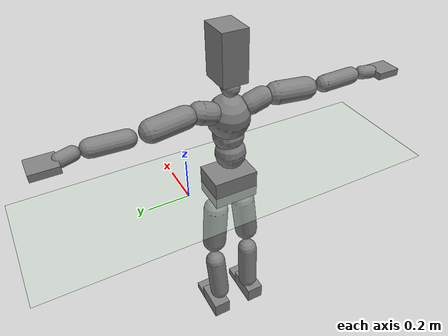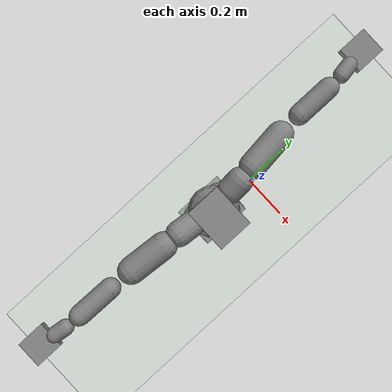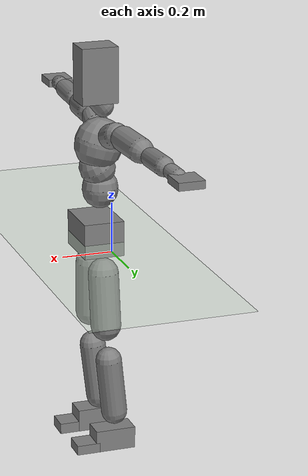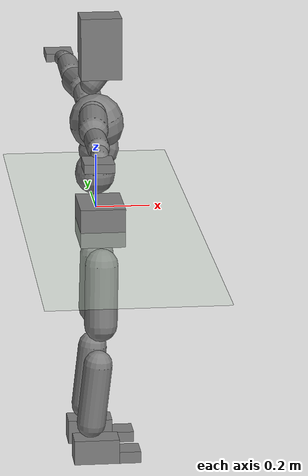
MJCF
<mujoco model="humanoid">
  <compiler coordinate="local" />
  <statistic extent="2" center="0 0 1" />
  <option timestep="0.00555" />
  <default>
    <motor ctrlrange="-1 1" ctrllimited="true" />
    <geom type="capsule" condim="1" friction="1.0 0.05 0.05" solimp=".9 .99 .003" solref=".015 1" />
    <joint type="hinge" damping="0.1" stiffness="5" armature=".007" limited="true" solimplimit="0 .99 .01" />
    <site size=".04" group="3" />
    <default class="force-torque">
      <site type="box" size=".01 .01 .02" rgba="1 0 0 1" />
    </default>
    <default class="touch">
      <site type="capsule" rgba="0 0 1 .3" />
    </default>
  </default>
  <asset>
    <texture type="skybox" builtin="gradient" rgb1=".4 .5 .6" rgb2="0 0 0" width="100" height="100" />
    <texture builtin="flat" height="1278" mark="cross" markrgb="1 1 1" name="texgeom" random="0.01" rgb1="0.8 0.6 0.4" rgb2="0.8 0.6 0.4" type="cube" width="127" />
    <texture builtin="checker" height="100" name="texplane" rgb1="0 0 0" rgb2="0.8 0.8 0.8" type="2d" width="100" />
    <material name="MatPlane" reflectance="0.5" shininess="1" specular="1" texrepeat="60 60" texture="texplane" />
    <material name="geom" texture="texgeom" texuniform="true" />
  </asset>
  <worldbody>
    <light cutoff="100" diffuse="1 1 1" dir="-0 0 -1.3" directional="true" exponent="1" pos="0 0 1.3" specular=".1 .1 .1" />
    <geom conaffinity="1" condim="3" name="floor" pos="0 0 0" rgba="0.8 0.9 0.8 1" size="100 100 .2" type="plane" material="MatPlane" />
    <body name="Pelvis" pos="-0.0009 -0.2114 0.0278">
      <freejoint name="Pelvis" />
      <geom type="box" pos="-0.0042 0.0001 -0.0160" size="0.082 0.1095 0.0713" quat="1.0000 0.0000 0.0000 0.0000" density="3010.216059" />
      <body name="L_Hip" pos="-0.008 0.0714 -0.0896">
        <joint name="L_Hip_x" type="hinge" pos="0 0 0" axis="1 0 0" stiffness="800" damping="80" armature="0.02" range="-180.0000 180.0000" />
        <joint name="L_Hip_y" type="hinge" pos="0 0 0" axis="0 1 0" stiffness="800" damping="80" armature="0.02" range="-180.0000 180.0000" />
        <joint name="L_Hip_z" type="hinge" pos="0 0 0" axis="0 0 1" stiffness="800" damping="80" armature="0.02" range="-180.0000 180.0000" />
        <geom type="capsule" contype="1" conaffinity="1" density="2040.816327" fromto="-0.0013 0.0061 -0.0728 -0.0054 0.0245 -0.2914" size="0.0613" />
        <body name="L_Knee" pos="-0.0067 0.0307 -0.3642">
          <joint name="L_Knee_x" type="hinge" pos="0 0 0" axis="1 0 0" stiffness="800" damping="80" armature="0.02" range="-180.0000 180.0000" />
          <joint name="L_Knee_y" type="hinge" pos="0 0 0" axis="0 1 0" stiffness="800" damping="80" armature="0.02" range="-180.0000 180.0000" />
          <joint name="L_Knee_z" type="hinge" pos="0 0 0" axis="0 0 1" stiffness="800" damping="80" armature="0.02" range="-180.0000 180.0000" />
          <geom type="capsule" contype="1" conaffinity="1" density="1234.567901" fromto="-0.0087 -0.0023 -0.0767 -0.0348 -0.0092 -0.3067" size="0.0529" />
          <body name="L_Ankle" pos="-0.0435 -0.0116 -0.3833">
            <joint name="L_Ankle_x" type="hinge" pos="0 0 0" axis="1 0 0" stiffness="800" damping="80" armature="0.02" range="-180.0000 180.0000" />
            <joint name="L_Ankle_y" type="hinge" pos="0 0 0" axis="0 1 0" stiffness="800" damping="80" armature="0.02" range="-180.0000 180.0000" />
            <joint name="L_Ankle_z" type="hinge" pos="0 0 0" axis="0 0 1" stiffness="800" damping="80" armature="0.02" range="-180.0000 180.0000" />
            <geom type="box" pos="0.0232 0.0206 -0.0237" size="0.082 0.0455 0.0449" quat="1.0000 0.0000 0.0000 0.0000" density="447.171219" />
            <body name="L_Toe" pos="0.1144 0.0233 -0.0546">
              <joint name="L_Toe_x" type="hinge" pos="0 0 0" axis="1 0 0" stiffness="500" damping="50" armature="0.02" range="-180.0000 180.0000" />
              <joint name="L_Toe_y" type="hinge" pos="0 0 0" axis="0 1 0" stiffness="500" damping="50" armature="0.02" range="-180.0000 180.0000" />
              <joint name="L_Toe_z" type="hinge" pos="0 0 0" axis="0 0 1" stiffness="500" damping="50" armature="0.02" range="-180.0000 180.0000" />
              <geom type="box" pos="0.0239 -0.0027 0.0055" size="0.048 0.0458 0.0195" quat="1.0000 0.0000 0.0000 0.0000" density="413.943028" />
            </body>
          </body>
        </body>
      </body>
      <body name="R_Hip" pos="-0.0048 -0.069 -0.089">
        <joint name="R_Hip_x" type="hinge" pos="0 0 0" axis="1 0 0" stiffness="800" damping="80" armature="0.02" range="-180.0000 180.0000" />
        <joint name="R_Hip_y" type="hinge" pos="0 0 0" axis="0 1 0" stiffness="800" damping="80" armature="0.02" range="-180.0000 180.0000" />
        <joint name="R_Hip_z" type="hinge" pos="0 0 0" axis="0 0 1" stiffness="800" damping="80" armature="0.02" range="-180.0000 180.0000" />
        <geom type="capsule" contype="1" conaffinity="1" density="2040.816327" fromto="-0.0018 -0.0072 -0.0741 -0.0073 -0.0289 -0.2965" size="0.0605" />
        <body name="R_Knee" pos="-0.0092 -0.0362 -0.3707">
          <joint name="R_Knee_x" type="hinge" pos="0 0 0" axis="1 0 0" stiffness="800" damping="80" armature="0.02" range="-180.0000 180.0000" />
          <joint name="R_Knee_y" type="hinge" pos="0 0 0" axis="0 1 0" stiffness="800" damping="80" armature="0.02" range="-180.0000 180.0000" />
          <joint name="R_Knee_z" type="hinge" pos="0 0 0" axis="0 0 1" stiffness="800" damping="80" armature="0.02" range="-180.0000 180.0000" />
          <geom type="capsule" contype="1" conaffinity="1" density="1234.567901" fromto="-0.0084 0.0028 -0.0767 -0.0335 0.0112 -0.3069" size="0.0531" />
          <body name="R_Ankle" pos="-0.0419 0.014 -0.3836">
            <joint name="R_Ankle_x" type="hinge" pos="0 0 0" axis="1 0 0" stiffness="800" damping="80" armature="0.02" range="-180.0000 180.0000" />
            <joint name="R_Ankle_y" type="hinge" pos="0 0 0" axis="0 1 0" stiffness="800" damping="80" armature="0.02" range="-180.0000 180.0000" />
            <joint name="R_Ankle_z" type="hinge" pos="0 0 0" axis="0 0 1" stiffness="800" damping="80" armature="0.02" range="-180.0000 180.0000" />
            <geom type="box" pos="0.0245 -0.0181 -0.0169" size="0.083 0.046 0.0458" quat="1.0000 0.0000 0.0000 0.0000" density="432.719457" />
            <body name="R_Toe" pos="0.1179 -0.022 -0.0464">
              <joint name="R_Toe_x" type="hinge" pos="0 0 0" axis="1 0 0" stiffness="500" damping="50" armature="0.02" range="-180.0000 180.0000" />
              <joint name="R_Toe_y" type="hinge" pos="0 0 0" axis="0 1 0" stiffness="500" damping="50" armature="0.02" range="-180.0000 180.0000" />
              <joint name="R_Toe_z" type="hinge" pos="0 0 0" axis="0 0 1" stiffness="500" damping="50" armature="0.02" range="-180.0000 180.0000" />
              <geom type="box" pos="0.0218 0.0039 0.0054" size="0.047 0.0457 0.0217" quat="1.0000 0.0000 0.0000 0.0000" density="384.241938" />
            </body>
          </body>
        </body>
      </body>
      <body name="Torso" pos="-0.0222 -0.0025 0.1033">
        <joint name="Torso_x" type="hinge" pos="0 0 0" axis="1 0 0" stiffness="1000" damping="100" armature="0.02" range="-180.0000 180.0000" />
        <joint name="Torso_y" type="hinge" pos="0 0 0" axis="0 1 0" stiffness="1000" damping="100" armature="0.02" range="-180.0000 180.0000" />
        <joint name="Torso_z" type="hinge" pos="0 0 0" axis="0 0 1" stiffness="1000" damping="100" armature="0.02" range="-180.0000 180.0000" />
        <geom type="capsule" contype="1" conaffinity="1" density="2040.816327" fromto="-0.0008 0.0016 0.0574 -0.0009 0.0020 0.0702" size="0.0723" />
        <body name="Spine" pos="-0.0017 0.0036 0.1277">
          <joint name="Spine_x" type="hinge" pos="0 0 0" axis="1 0 0" stiffness="1000" damping="100" armature="0.02" range="-180.0000 180.0000" />
          <joint name="Spine_y" type="hinge" pos="0 0 0" axis="0 1 0" stiffness="1000" damping="100" armature="0.02" range="-180.0000 180.0000" />
          <joint name="Spine_z" type="hinge" pos="0 0 0" axis="0 0 1" stiffness="1000" damping="100" armature="0.02" range="-180.0000 180.0000" />
          <geom type="capsule" contype="1" conaffinity="1" density="2040.816327" fromto="0.0125 0.0009 0.0221 0.0153 0.0011 0.0270" size="0.0719" />
          <body name="Chest" pos="0.0279 0.002 0.0491">
            <joint name="Chest_x" type="hinge" pos="0 0 0" axis="1 0 0" stiffness="1000" damping="100" armature="0.02" range="-180.0000 180.0000" />
            <joint name="Chest_y" type="hinge" pos="0 0 0" axis="0 1 0" stiffness="1000" damping="100" armature="0.02" range="-180.0000 180.0000" />
            <joint name="Chest_z" type="hinge" pos="0 0 0" axis="0 0 1" stiffness="1000" damping="100" armature="0.02" range="-180.0000 180.0000" />
            <geom type="capsule" contype="1" conaffinity="1" density="2040.816327" fromto="-0.0193 -0.0006 0.0662 -0.0235 -0.0007 0.0810" size="0.0969" />
            <body name="Neck" pos="-0.0498 -0.002 0.2082">
              <joint name="Neck_x" type="hinge" pos="0 0 0" axis="1 0 0" stiffness="500" damping="50" armature="0.02" range="-180.0000 180.0000" />
              <joint name="Neck_y" type="hinge" pos="0 0 0" axis="0 1 0" stiffness="500" damping="50" armature="0.02" range="-180.0000 180.0000" />
              <joint name="Neck_z" type="hinge" pos="0 0 0" axis="0 0 1" stiffness="500" damping="50" armature="0.02" range="-180.0000 180.0000" />
              <geom type="capsule" contype="1" conaffinity="1" density="1000" fromto="0.0100 0.0007 0.0125 0.0402 0.0028 0.0499" size="0.041" />
              <body name="Head" pos="0.0502 0.0035 0.0623">
                <joint name="Head_x" type="hinge" pos="0 0 0" axis="1 0 0" stiffness="500" damping="50" armature="0.02" range="-180.0000 180.0000" />
                <joint name="Head_y" type="hinge" pos="0 0 0" axis="0 1 0" stiffness="500" damping="50" armature="0.02" range="-180.0000 180.0000" />
                <joint name="Head_z" type="hinge" pos="0 0 0" axis="0 0 1" stiffness="500" damping="50" armature="0.02" range="-180.0000 180.0000" />
                <geom type="box" pos="-0.0101 -0.0045 0.0859" size="0.0736 0.0584 0.1126" quat="1.0000 0.0000 0.0000 0.0000" density="1023.9051" />
              </body>
            </body>
            <body name="L_Thorax" pos="-0.0369 0.0753 0.1178">
              <joint name="L_Thorax_x" type="hinge" pos="0 0 0" axis="1 0 0" stiffness="500" damping="50" armature="0.02" range="-180.0000 180.0000" />
              <joint name="L_Thorax_y" type="hinge" pos="0 0 0" axis="0 1 0" stiffness="500" damping="50" armature="0.02" range="-180.0000 180.0000" />
              <joint name="L_Thorax_z" type="hinge" pos="0 0 0" axis="0 0 1" stiffness="500" damping="50" armature="0.02" range="-180.0000 180.0000" />
              <geom type="capsule" contype="1" conaffinity="1" density="1000" fromto="-0.0015 0.0171 0.0063 -0.0058 0.0683 0.0254" size="0.0496" />
              <body name="L_Shoulder" pos="-0.0073 0.0853 0.0317">
                <joint name="L_Shoulder_x" type="hinge" pos="0 0 0" axis="1 0 0" stiffness="500" damping="50" armature="0.02" range="-720.0000 720.0000" />
                <joint name="L_Shoulder_y" type="hinge" pos="0 0 0" axis="0 1 0" stiffness="500" damping="50" armature="0.02" range="-720.0000 720.0000" />
                <joint name="L_Shoulder_z" type="hinge" pos="0 0 0" axis="0 0 1" stiffness="500" damping="50" armature="0.02" range="-720.0000 720.0000" />
                <geom type="capsule" contype="1" conaffinity="1" density="1000" fromto="-0.0055 0.0502 -0.0024 -0.0220 0.2010 -0.0096" size="0.0498" />
                <body name="L_Elbow" pos="-0.0275 0.2512 -0.012">
                  <joint name="L_Elbow_x" type="hinge" pos="0 0 0" axis="1 0 0" stiffness="500" damping="50" armature="0.02" range="-720.0000 720.0000" />
                  <joint name="L_Elbow_y" type="hinge" pos="0 0 0" axis="0 1 0" stiffness="500" damping="50" armature="0.02" range="-720.0000 720.0000" />
                  <joint name="L_Elbow_z" type="hinge" pos="0 0 0" axis="0 0 1" stiffness="500" damping="50" armature="0.02" range="-720.0000 720.0000" />
                  <geom type="capsule" contype="1" conaffinity="1" density="1000" fromto="0.0000 0.0476 0.0018 0.0000 0.1904 0.0072" size="0.0386" />
                  <body name="L_Wrist" pos="0 0.238 0.009">
                    <joint name="L_Wrist_x" type="hinge" pos="0 0 0" axis="1 0 0" stiffness="300" damping="30" armature="0.02" range="-180.0000 180.0000" />
                    <joint name="L_Wrist_y" type="hinge" pos="0 0 0" axis="0 1 0" stiffness="300" damping="30" armature="0.02" range="-180.0000 180.0000" />
                    <joint name="L_Wrist_z" type="hinge" pos="0 0 0" axis="0 0 1" stiffness="300" damping="30" armature="0.02" range="-180.0000 180.0000" />
                    <geom type="capsule" contype="1" conaffinity="1" density="1000" fromto="-0.0026 0.0159 -0.0019 -0.0106 0.0637 -0.0077" size="0.0301" />
                    <body name="L_Hand" pos="-0.0132 0.0797 -0.0097">
                      <joint name="L_Hand_x" type="hinge" pos="0 0 0" axis="1 0 0" stiffness="300" damping="30" armature="0.02" range="-180.0000 180.0000" />
                      <joint name="L_Hand_y" type="hinge" pos="0 0 0" axis="0 1 0" stiffness="300" damping="30" armature="0.02" range="-180.0000 180.0000" />
                      <joint name="L_Hand_z" type="hinge" pos="0 0 0" axis="0 0 1" stiffness="300" damping="30" armature="0.02" range="-180.0000 180.0000" />
                      <geom type="box" pos="-0.0064 0.0474 0.0008" size="0.0513 0.0564 0.0153" quat="1.0000 0.0000 0.0000 0.0000" density="393.023524" />
                    </body>
                  </body>
                </body>
              </body>
            </body>
            <body name="R_Thorax" pos="-0.0418 -0.077 0.1156">
              <joint name="R_Thorax_x" type="hinge" pos="0 0 0" axis="1 0 0" stiffness="500" damping="50" armature="0.02" range="-180.0000 180.0000" />
              <joint name="R_Thorax_y" type="hinge" pos="0 0 0" axis="0 1 0" stiffness="500" damping="50" armature="0.02" range="-180.0000 180.0000" />
              <joint name="R_Thorax_z" type="hinge" pos="0 0 0" axis="0 0 1" stiffness="500" damping="50" armature="0.02" range="-180.0000 180.0000" />
              <geom type="capsule" contype="1" conaffinity="1" density="1000" fromto="-0.0020 -0.0178 0.0066 -0.0078 -0.0714 0.0262" size="0.0486" />
              <body name="R_Shoulder" pos="-0.0098 -0.0892 0.0328">
                <joint name="R_Shoulder_x" type="hinge" pos="0 0 0" axis="1 0 0" stiffness="500" damping="50" armature="0.02" range="-720.0000 720.0000" />
                <joint name="R_Shoulder_y" type="hinge" pos="0 0 0" axis="0 1 0" stiffness="500" damping="50" armature="0.02" range="-720.0000 720.0000" />
                <joint name="R_Shoulder_z" type="hinge" pos="0 0 0" axis="0 0 1" stiffness="500" damping="50" armature="0.02" range="-720.0000 720.0000" />
                <geom type="capsule" contype="1" conaffinity="1" density="1000" fromto="-0.0040 -0.0492 -0.0026 -0.0161 -0.1968 -0.0105" size="0.0512" />
                <body name="R_Elbow" pos="-0.0202 -0.246 -0.0132">
                  <joint name="R_Elbow_x" type="hinge" pos="0 0 0" axis="1 0 0" stiffness="500" damping="50" armature="0.02" range="-720.0000 720.0000" />
                  <joint name="R_Elbow_y" type="hinge" pos="0 0 0" axis="0 1 0" stiffness="500" damping="50" armature="0.02" range="-720.0000 720.0000" />
                  <joint name="R_Elbow_z" type="hinge" pos="0 0 0" axis="0 0 1" stiffness="500" damping="50" armature="0.02" range="-720.0000 720.0000" />
                  <geom type="capsule" contype="1" conaffinity="1" density="1000" fromto="-0.0007 -0.0490 0.0017 -0.0028 -0.1961 0.0069" size="0.0388" />
                  <body name="R_Wrist" pos="-0.0035 -0.2452 0.0086">
                    <joint name="R_Wrist_x" type="hinge" pos="0 0 0" axis="1 0 0" stiffness="300" damping="30" armature="0.02" range="-180.0000 180.0000" />
                    <joint name="R_Wrist_y" type="hinge" pos="0 0 0" axis="0 1 0" stiffness="300" damping="30" armature="0.02" range="-180.0000 180.0000" />
                    <joint name="R_Wrist_z" type="hinge" pos="0 0 0" axis="0 0 1" stiffness="300" damping="30" armature="0.02" range="-180.0000 180.0000" />
                    <geom type="capsule" contype="1" conaffinity="1" density="1000" fromto="-0.0021 -0.0161 -0.0014 -0.0083 -0.0643 -0.0058" size="0.0308" />
                    <body name="R_Hand" pos="-0.0104 -0.0804 -0.0072">
                      <joint name="R_Hand_x" type="hinge" pos="0 0 0" axis="1 0 0" stiffness="300" damping="30" armature="0.02" range="-180.0000 180.0000" />
                      <joint name="R_Hand_y" type="hinge" pos="0 0 0" axis="0 1 0" stiffness="300" damping="30" armature="0.02" range="-180.0000 180.0000" />
                      <joint name="R_Hand_z" type="hinge" pos="0 0 0" axis="0 0 1" stiffness="300" damping="30" armature="0.02" range="-180.0000 180.0000" />
                      <geom type="box" pos="-0.0080 -0.0444 -0.0009" size="0.052 0.0549 0.0156" quat="1.0000 0.0000 0.0000 0.0000" density="397.461522" />
                    </body>
                  </body>
                </body>
              </body>
            </body>
          </body>
        </body>
      </body>
    </body>
  </worldbody>
  <actuator>
    <motor name="L_Hip_x" joint="L_Hip_x" gear="500" />
    <motor name="L_Hip_y" joint="L_Hip_y" gear="500" />
    <motor name="L_Hip_z" joint="L_Hip_z" gear="500" />
    <motor name="L_Knee_x" joint="L_Knee_x" gear="500" />
    <motor name="L_Knee_y" joint="L_Knee_y" gear="500" />
    <motor name="L_Knee_z" joint="L_Knee_z" gear="500" />
    <motor name="L_Ankle_x" joint="L_Ankle_x" gear="500" />
    <motor name="L_Ankle_y" joint="L_Ankle_y" gear="500" />
    <motor name="L_Ankle_z" joint="L_Ankle_z" gear="500" />
    <motor name="L_Toe_x" joint="L_Toe_x" gear="500" />
    <motor name="L_Toe_y" joint="L_Toe_y" gear="500" />
    <motor name="L_Toe_z" joint="L_Toe_z" gear="500" />
    <motor name="R_Hip_x" joint="R_Hip_x" gear="500" />
    <motor name="R_Hip_y" joint="R_Hip_y" gear="500" />
    <motor name="R_Hip_z" joint="R_Hip_z" gear="500" />
    <motor name="R_Knee_x" joint="R_Knee_x" gear="500" />
    <motor name="R_Knee_y" joint="R_Knee_y" gear="500" />
    <motor name="R_Knee_z" joint="R_Knee_z" gear="500" />
    <motor name="R_Ankle_x" joint="R_Ankle_x" gear="500" />
    <motor name="R_Ankle_y" joint="R_Ankle_y" gear="500" />
    <motor name="R_Ankle_z" joint="R_Ankle_z" gear="500" />
    <motor name="R_Toe_x" joint="R_Toe_x" gear="500" />
    <motor name="R_Toe_y" joint="R_Toe_y" gear="500" />
    <motor name="R_Toe_z" joint="R_Toe_z" gear="500" />
    <motor name="Torso_x" joint="Torso_x" gear="500" />
    <motor name="Torso_y" joint="Torso_y" gear="500" />
    <motor name="Torso_z" joint="Torso_z" gear="500" />
    <motor name="Spine_x" joint="Spine_x" gear="500" />
    <motor name="Spine_y" joint="Spine_y" gear="500" />
    <motor name="Spine_z" joint="Spine_z" gear="500" />
    <motor name="Chest_x" joint="Chest_x" gear="500" />
    <motor name="Chest_y" joint="Chest_y" gear="500" />
    <motor name="Chest_z" joint="Chest_z" gear="500" />
    <motor name="Neck_x" joint="Neck_x" gear="500" />
    <motor name="Neck_y" joint="Neck_y" gear="500" />
    <motor name="Neck_z" joint="Neck_z" gear="500" />
    <motor name="Head_x" joint="Head_x" gear="500" />
    <motor name="Head_y" joint="Head_y" gear="500" />
    <motor name="Head_z" joint="Head_z" gear="500" />
    <motor name="L_Thorax_x" joint="L_Thorax_x" gear="500" />
    <motor name="L_Thorax_y" joint="L_Thorax_y" gear="500" />
    <motor name="L_Thorax_z" joint="L_Thorax_z" gear="500" />
    <motor name="L_Shoulder_x" joint="L_Shoulder_x" gear="500" />
    <motor name="L_Shoulder_y" joint="L_Shoulder_y" gear="500" />
    <motor name="L_Shoulder_z" joint="L_Shoulder_z" gear="500" />
    <motor name="L_Elbow_x" joint="L_Elbow_x" gear="500" />
    <motor name="L_Elbow_y" joint="L_Elbow_y" gear="500" />
    <motor name="L_Elbow_z" joint="L_Elbow_z" gear="500" />
    <motor name="L_Wrist_x" joint="L_Wrist_x" gear="500" />
    <motor name="L_Wrist_y" joint="L_Wrist_y" gear="500" />
    <motor name="L_Wrist_z" joint="L_Wrist_z" gear="500" />
    <motor name="L_Hand_x" joint="L_Hand_x" gear="500" />
    <motor name="L_Hand_y" joint="L_Hand_y" gear="500" />
    <motor name="L_Hand_z" joint="L_Hand_z" gear="500" />
    <motor name="R_Thorax_x" joint="R_Thorax_x" gear="500" />
    <motor name="R_Thorax_y" joint="R_Thorax_y" gear="500" />
    <motor name="R_Thorax_z" joint="R_Thorax_z" gear="500" />
    <motor name="R_Shoulder_x" joint="R_Shoulder_x" gear="500" />
    <motor name="R_Shoulder_y" joint="R_Shoulder_y" gear="500" />
    <motor name="R_Shoulder_z" joint="R_Shoulder_z" gear="500" />
    <motor name="R_Elbow_x" joint="R_Elbow_x" gear="500" />
    <motor name="R_Elbow_y" joint="R_Elbow_y" gear="500" />
    <motor name="R_Elbow_z" joint="R_Elbow_z" gear="500" />
    <motor name="R_Wrist_x" joint="R_Wrist_x" gear="500" />
    <motor name="R_Wrist_y" joint="R_Wrist_y" gear="500" />
    <motor name="R_Wrist_z" joint="R_Wrist_z" gear="500" />
    <motor name="R_Hand_x" joint="R_Hand_x" gear="500" />
    <motor name="R_Hand_y" joint="R_Hand_y" gear="500" />
    <motor name="R_Hand_z" joint="R_Hand_z" gear="500" />
  </actuator>
  <contact />
  <size njmax="700" nconmax="700" />
</mujoco>
